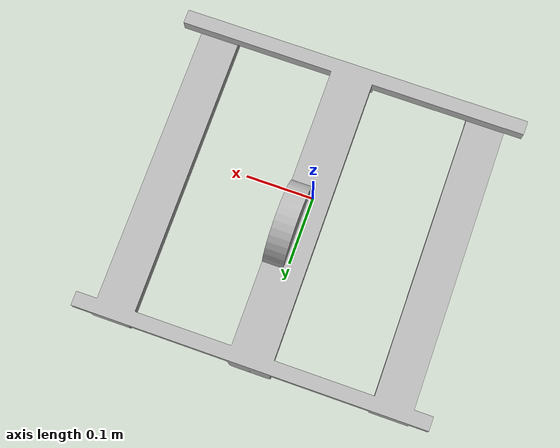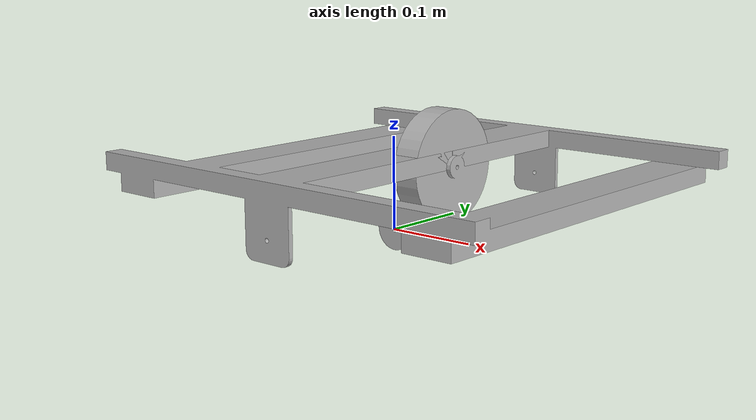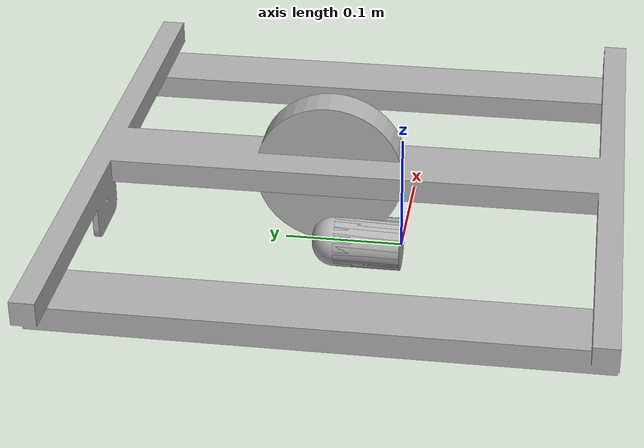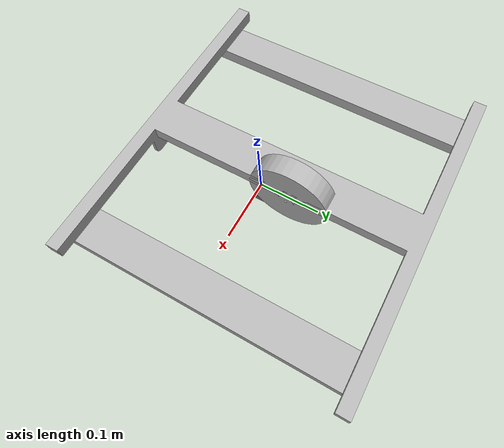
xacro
<?xml version="1.0" ?>
<robot name="servebot" xmlns:xacro="http://www.ros.org/wiki/xacro">

<xacro:include filename="$(find servebot_description)/urdf/materials.xacro" />
<xacro:include filename="$(find servebot_description)/urdf/servebot.trans" />
<xacro:include filename="$(find servebot_description)/urdf/servebot.gazebo" />

<link name="base_link">
  <inertial>
    <origin xyz="3.8279058168706735e-16 -3.8279058168706733e-17 0.09845474977897602" rpy="0 0 0"/>
    <mass value="5.132071293842641"/>
    <inertia ixx="0.11579" iyy="0.127513" izz="0.241747" ixy="-0.0" iyz="0.0" ixz="0.0"/>
  </inertial>
  <visual>
    <origin xyz="0 0 0" rpy="0 0 0"/>
    <geometry>
      <mesh filename="package://servebot_description/meshes/base_link.stl" scale="0.001 0.001 0.001"/>
    </geometry>
    <material name="silver"/>
  </visual>
  <collision>
    <origin xyz="0 0 0" rpy="0 0 0"/>
    <geometry>
      <mesh filename="package://servebot_description/meshes/base_link.stl" scale="0.001 0.001 0.001"/>
    </geometry>
  </collision>
</link>

<link name="wheel_left_1">
  <inertial>
    <origin xyz="8.603722720054142e-15 -0.019888712241653395 1.3877787807814457e-17" rpy="0 0 0"/>
    <mass value="0.344575772731954"/>
    <inertia ixx="0.000361" iyy="0.000669" izz="0.000361" ixy="-0.0" iyz="0.0" ixz="-0.0"/>
  </inertial>
  <visual>
    <origin xyz="-0.0 0.2225 -0.0625" rpy="0 0 0"/>
    <geometry>
      <mesh filename="package://servebot_description/meshes/wheel_left.stl" scale="0.001 0.001 0.001"/>
    </geometry>
    <material name="silver"/>
  </visual>
  <collision>
    <origin xyz="-0.0 0.2225 -0.0625" rpy="0 0 0"/>
    <geometry>
      <mesh filename="package://servebot_description/meshes/wheel_left.stl" scale="0.001 0.001 0.001"/>
    </geometry>
  </collision>
</link>

<link name="wheel_right_1">
  <inertial>
    <origin xyz="8.603722720054142e-15 0.019888712241653395 0.0" rpy="0 0 0"/>
    <mass value="0.344575772731954"/>
    <inertia ixx="0.000361" iyy="0.000669" izz="0.000361" ixy="0.0" iyz="0.0" ixz="0.0"/>
  </inertial>
  <visual>
    <origin xyz="-0.0 -0.2225 -0.0625" rpy="0 0 0"/>
    <geometry>
      <mesh filename="package://servebot_description/meshes/wheel_right.stl" scale="0.001 0.001 0.001"/>
    </geometry>
    <material name="silver"/>
  </visual>
  <collision>
    <origin xyz="-0.0 -0.2225 -0.0625" rpy="0 0 0"/>
    <geometry>
      <mesh filename="package://servebot_description/meshes/wheel_right.stl" scale="0.001 0.001 0.001"/>
    </geometry>
  </collision>
</link>

<link name="caster_front_right_1">
  <inertial>
    <origin xyz="-2.220446049250313e-16 0.0 -0.03687697337696345" rpy="0 0 0"/>
    <mass value="0.13177511785394527"/>
    <inertia ixx="7.7e-05" iyy="7.7e-05" izz="3.2e-05" ixy="0.0" iyz="-0.0" ixz="0.0"/>
  </inertial>
  <visual>
    <origin xyz="-0.1975 -0.1625 -0.0795" rpy="0 0 0"/>
    <geometry>
      <mesh filename="package://servebot_description/meshes/caster_front_right.stl" scale="0.001 0.001 0.001"/>
    </geometry>
    <material name="silver"/>
  </visual>
  <collision>
    <origin xyz="-0.1975 -0.1625 -0.0795" rpy="0 0 0"/>
    <geometry>
      <mesh filename="package://servebot_description/meshes/caster_front_right.stl" scale="0.001 0.001 0.001"/>
    </geometry>
  </collision>
</link>

<link name="caster_front_left_1">
  <inertial>
    <origin xyz="-2.220446049250313e-16 0.0 -0.03687697337696341" rpy="0 0 0"/>
    <mass value="0.13177511785394527"/>
    <inertia ixx="7.7e-05" iyy="7.7e-05" izz="3.2e-05" ixy="0.0" iyz="0.0" ixz="0.0"/>
  </inertial>
  <visual>
    <origin xyz="-0.1975 0.1625 -0.0795" rpy="0 0 0"/>
    <geometry>
      <mesh filename="package://servebot_description/meshes/caster_front_left.stl" scale="0.001 0.001 0.001"/>
    </geometry>
    <material name="silver"/>
  </visual>
  <collision>
    <origin xyz="-0.1975 0.1625 -0.0795" rpy="0 0 0"/>
    <geometry>
      <mesh filename="package://servebot_description/meshes/caster_front_left.stl" scale="0.001 0.001 0.001"/>
    </geometry>
  </collision>
</link>

<link name="caster_rear_right_1">
  <inertial>
    <origin xyz="-1.942890293094024e-16 0.0 -0.03687697337696345" rpy="0 0 0"/>
    <mass value="0.13177511785394527"/>
    <inertia ixx="7.7e-05" iyy="7.7e-05" izz="3.2e-05" ixy="0.0" iyz="-0.0" ixz="0.0"/>
  </inertial>
  <visual>
    <origin xyz="0.1975 -0.1625 -0.0795" rpy="0 0 0"/>
    <geometry>
      <mesh filename="package://servebot_description/meshes/caster_rear_right.stl" scale="0.001 0.001 0.001"/>
    </geometry>
    <material name="silver"/>
  </visual>
  <collision>
    <origin xyz="0.1975 -0.1625 -0.0795" rpy="0 0 0"/>
    <geometry>
      <mesh filename="package://servebot_description/meshes/caster_rear_right.stl" scale="0.001 0.001 0.001"/>
    </geometry>
  </collision>
</link>

<link name="caster_rear_left_1">
  <inertial>
    <origin xyz="-1.942890293094024e-16 0.0 -0.03687697337696341" rpy="0 0 0"/>
    <mass value="0.13177511785394527"/>
    <inertia ixx="7.7e-05" iyy="7.7e-05" izz="3.2e-05" ixy="0.0" iyz="0.0" ixz="0.0"/>
  </inertial>
  <visual>
    <origin xyz="0.1975 0.1625 -0.0795" rpy="0 0 0"/>
    <geometry>
      <mesh filename="package://servebot_description/meshes/caster_rear_left.stl" scale="0.001 0.001 0.001"/>
    </geometry>
    <material name="silver"/>
  </visual>
  <collision>
    <origin xyz="0.1975 0.1625 -0.0795" rpy="0 0 0"/>
    <geometry>
      <mesh filename="package://servebot_description/meshes/caster_rear_left.stl" scale="0.001 0.001 0.001"/>
    </geometry>
  </collision>
</link>

<!-- Wheel joints — renamed from "Revolute N" (spaces illegal in ros2_control) -->
<joint name="wheel_left_joint" type="continuous">
  <origin xyz="0.0 -0.2225 0.0625" rpy="0 0 0"/>
  <parent link="base_link"/>
  <child link="wheel_left_1"/>
  <axis xyz="0.0 1.0 0.0"/>
</joint>

<joint name="wheel_right_joint" type="continuous">
  <origin xyz="0.0 0.2225 0.0625" rpy="0 0 0"/>
  <parent link="base_link"/>
  <child link="wheel_right_1"/>
  <axis xyz="0.0 1.0 0.0"/>
</joint>

<!-- Caster joints — renamed from "Rigid N" -->
<joint name="caster_front_right_joint" type="fixed">
  <origin xyz="0.1975 0.1625 0.0795" rpy="0 0 0"/>
  <parent link="base_link"/>
  <child link="caster_front_right_1"/>
</joint>

<joint name="caster_front_left_joint" type="fixed">
  <origin xyz="0.1975 -0.1625 0.0795" rpy="0 0 0"/>
  <parent link="base_link"/>
  <child link="caster_front_left_1"/>
</joint>

<joint name="caster_rear_right_joint" type="fixed">
  <origin xyz="-0.1975 0.1625 0.0795" rpy="0 0 0"/>
  <parent link="base_link"/>
  <child link="caster_rear_right_1"/>
</joint>

<joint name="caster_rear_left_joint" type="fixed">
  <origin xyz="-0.1975 -0.1625 0.0795" rpy="0 0 0"/>
  <parent link="base_link"/>
  <child link="caster_rear_left_1"/>
</joint>

<!-- ros2_control hardware interface for Gazebo simulation -->
<ros2_control name="servebot_hardware" type="system">
  <hardware>
    <plugin>gazebo_ros2_control/GazeboSystem</plugin>
  </hardware>
  <joint name="wheel_left_joint">
    <command_interface name="velocity"/>
    <state_interface name="position"/>
    <state_interface name="velocity"/>
  </joint>
  <joint name="wheel_right_joint">
    <command_interface name="velocity"/>
    <state_interface name="position"/>
    <state_interface name="velocity"/>
  </joint>
</ros2_control>

</robot>

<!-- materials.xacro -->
<robot name="servebot" xmlns:xacro="http://www.ros.org/wiki/xacro" >

<material name="silver">
  <color rgba="0.700 0.700 0.700 1.000"/>
</material>

</robot>

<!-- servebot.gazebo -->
<robot name="servebot" xmlns:xacro="http://www.ros.org/wiki/xacro">

<xacro:property name="body_color" value="Gazebo/Silver" />

<!-- gazebo_ros2_control plugin — loads controllers from config/controllers.yaml -->
<gazebo>
  <plugin name="gazebo_ros2_control" filename="libgazebo_ros2_control.so">
    <parameters>$(find servebot_description)/config/controllers.yaml</parameters>
  </plugin>
</gazebo>

<gazebo reference="base_link">
  <material>${body_color}</material>
  <mu1>0.2</mu1>
  <mu2>0.2</mu2>
  <selfCollide>true</selfCollide>
  <gravity>true</gravity>
</gazebo>

<gazebo reference="wheel_left_1">
  <material>${body_color}</material>
  <mu1>1.0</mu1>
  <mu2>1.0</mu2>
  <selfCollide>false</selfCollide>
</gazebo>

<gazebo reference="wheel_right_1">
  <material>${body_color}</material>
  <mu1>1.0</mu1>
  <mu2>1.0</mu2>
  <selfCollide>false</selfCollide>
</gazebo>

<gazebo reference="caster_front_right_1">
  <material>${body_color}</material>
  <mu1>0.01</mu1>
  <mu2>0.01</mu2>
  <selfCollide>false</selfCollide>
</gazebo>

<gazebo reference="caster_front_left_1">
  <material>${body_color}</material>
  <mu1>0.01</mu1>
  <mu2>0.01</mu2>
  <selfCollide>false</selfCollide>
</gazebo>

<gazebo reference="caster_rear_right_1">
  <material>${body_color}</material>
  <mu1>0.01</mu1>
  <mu2>0.01</mu2>
  <selfCollide>false</selfCollide>
</gazebo>

<gazebo reference="caster_rear_left_1">
  <material>${body_color}</material>
  <mu1>0.01</mu1>
  <mu2>0.01</mu2>
  <selfCollide>false</selfCollide>
</gazebo>

</robot>
